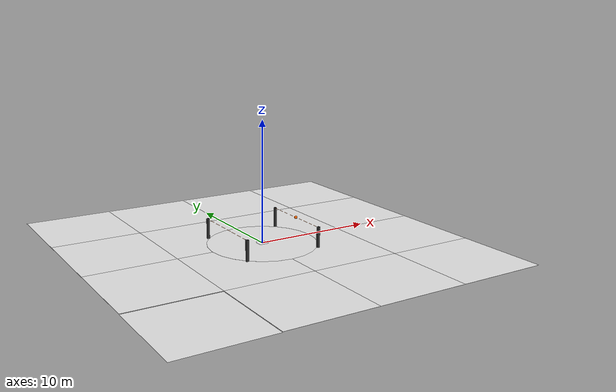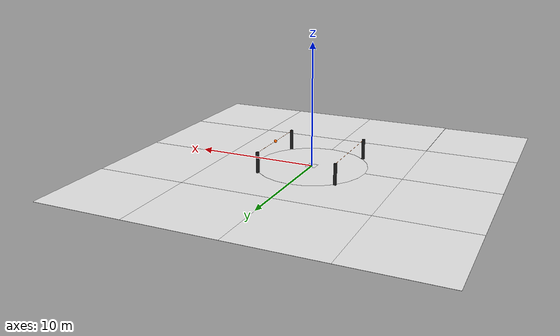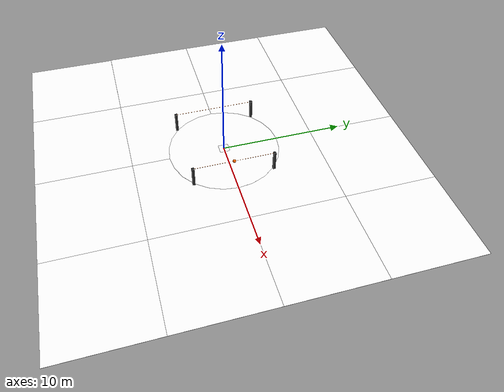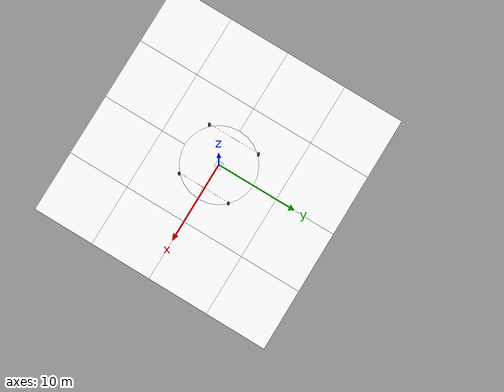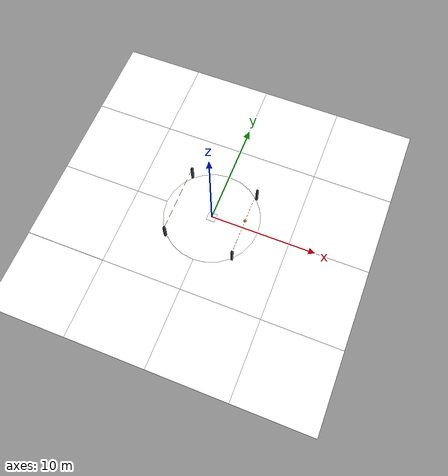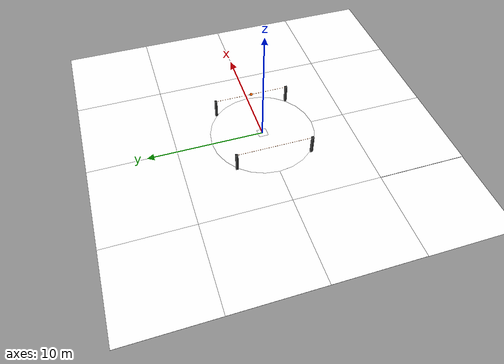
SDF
<?xml version='1.0' encoding='utf-8'?>
<sdf version='1.10'>
  <world name='eletroquad26_m2'>

    <physics type='ode'>
      <max_step_size>0.001</max_step_size>
      <real_time_factor>1</real_time_factor>
      <real_time_update_rate>1000</real_time_update_rate>
    </physics>
    <gravity>0 0 -9.8000000000000007</gravity>
    <magnetic_field>5.5644999999999998e-06 2.2875799999999999e-05 -4.2388400000000002e-05</magnetic_field>
    <atmosphere type='adiabatic'/>

    <scene>
      <ambient>0.400000006 0.400000006 0.400000006 1</ambient>
      <background>0.699999988 0.699999988 0.699999988 1</background>
      <sky/>
      <shadows>true</shadows>
    </scene>

    <!-- Bola pra Marcacao -->
    <model name='styro_ball'>
      <include><uri>models/eletroquad_26/hang_the_right_wire/styro_ball</uri></include>
      <pose degrees='true'>3.23 0 1.65 0 0 0</pose> <!--line 24-->
      <static>true</static>
    </model>
    <!-- Bola pra Marcacao -->

    <!-- Linhas -->
    <model name='pole1'>
      <include><uri>models/eletroquad_26/hang_the_right_wire/pole</uri></include>
      <pose degrees='true'>3.23 3.23 0.85 0 0 0</pose> <!--line 32-->
      <static>true</static>
    </model>
    <model name='pole2'>
      <include><uri>models/eletroquad_26/hang_the_right_wire/pole</uri></include>
      <pose degrees='true'>3.23 -3.23 0.85 0 0 0</pose> <!--line 37-->
      <static>true</static>
    </model>
    <model name='hose1'>
      <include><uri>models/eletroquad_26/hang_the_right_wire/hose</uri></include>
      <pose degrees='true'>3.23 0 1.65 -90 0 0</pose> <!--line 42-->
      <static>true</static>
    </model>

    <model name='pole3'>
      <include><uri>models/eletroquad_26/hang_the_right_wire/pole</uri></include>
      <pose degrees='true'>-3.23 3.23 0.85 0 0 0</pose> <!--line 48-->
      <static>true</static>
    </model>
    <model name='pole4'>
      <include><uri>models/eletroquad_26/hang_the_right_wire/pole</uri></include>
      <pose degrees='true'>-3.23 -3.23 0.85 0 0 0</pose> <!--line 53-->
      <static>true</static>
    </model>
    <model name='hose2'>
      <include><uri>models/eletroquad_26/hang_the_right_wire/hose</uri></include>
      <pose degrees='true'>-3.23 0 1.65 -90 0 0</pose> <!--line 58-->
      <static>true</static>
    </model>
    <!-- Linhas -->

    <!-- Takeoff -->
    <include>
      <uri>models/eletroquad_26/miscs/takeoff_platform</uri>
      <static>true</static>
      <pose degrees='true'>0 0 0.011 0 0 0</pose>
    </include>
    <!-- Takeoff -->

    <!-- Arena -->
    <include>
      <uri>models/eletroquad_26/miscs/arenas/circle</uri>
      <static>true</static>
      <pose degrees='true'>0 0 0.01 0 0 0</pose>
    </include>
    <!-- Arena -->

    <!-- Chao -->
      <include>
        <uri>models/eletroquad_26/miscs/ground_level</uri>
        <pose/>
      </include>
    <!-- Chao -->

    <!-- Luz -->
    <light name='sun' type='directional'>
      <pose>0 0 10 0 0 0</pose>
      <cast_shadows>true</cast_shadows>
      <intensity>1</intensity>
      <direction>-0.5 0.10000000000000001 -0.90000000000000002</direction>
      <diffuse>0.800000012 0.800000012 0.800000012 1</diffuse>
      <specular>0.200000003 0.200000003 0.200000003 1</specular>
      <attenuation>
        <range>1000</range>
        <linear>0.01</linear>
        <constant>0.90000000000000002</constant>
        <quadratic>0.001</quadratic>
      </attenuation>
      <spot>
        <inner_angle>0</inner_angle>
        <outer_angle>0</outer_angle>
        <falloff>0</falloff>
      </spot>
    </light>
    <!-- Luz -->

    <spherical_coordinates>
      <surface_model>EARTH_WGS84</surface_model>
      <world_frame_orientation>ENU</world_frame_orientation>
      <latitude_deg>47.397971057728974</latitude_deg>
      <longitude_deg>8.546163739800146</longitude_deg>
      <elevation>0</elevation>
    </spherical_coordinates>
  </world>
</sdf>

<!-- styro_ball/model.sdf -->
<sdf version='1.10'>
<model name='styro_ball'>
  <link name='styro_link'>
    <enable_wind>false</enable_wind>
    <collision name='styro_collision'>
      <geometry><sphere><radius>0.125</radius></sphere></geometry>
      <surface>
        <friction><ode/></friction>
        <bounce/>
        <contact/>
      </surface>
    </collision>
    <visual name='styro_visual'>
      <geometry><sphere><radius>0.125</radius></sphere></geometry>
      <!-- EDITAL -->
      <material><ambient>1 0.3984375 0</ambient><diffuse>1 0.3984375 0</diffuse><specular>1 0.3984375 0</specular></material>
      <!-- EDITAL -->

    </visual>
  </link>
  <self_collide>false</self_collide>
  <static>true</static>
</model>
</sdf>

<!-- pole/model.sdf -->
<sdf version='1.10'>
<model name='pole'>
  <link name='pole_link'>
    <enable_wind>false</enable_wind>
    <collision name='pole_collision'>
      <geometry><box><size>0.2 0.2 1.7</size></box></geometry>
      <surface>
        <friction><ode/></friction>
        <bounce/>
        <contact/>
      </surface>
    </collision>
    <visual name='pole_visual'>
      <geometry><box><size>0.2 0.2 1.7</size></box></geometry>
      <material>
        <diffuse>0.15 0.15 0.15 1</diffuse>
        <specular>1 1 1 1</specular>
      </material>
    </visual>
  </link>
  <self_collide>false</self_collide>
  <static>true</static>
</model>
</sdf>

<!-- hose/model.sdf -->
<sdf version='1.10'>
<model name='hose'>
  <link name='hose_link'>
    <enable_wind>false</enable_wind>
    <collision name='hose_collision'>
      <geometry><cylinder>
        <radius>0.00635</radius>
        <length>6.48</length>
      </cylinder></geometry>
      <surface>
        <friction><ode/></friction>
        <bounce/>
        <contact/>
      </surface>
    </collision>
    <visual name='hose_visual'>
      <geometry><cylinder>
        <radius>0.00635</radius>
        <length>6.48</length>
      </cylinder></geometry>
      <!-- EDITAL -->
      <material><ambient>1 0.3984375 0</ambient><diffuse>1 0.3984375 0</diffuse><specular>1 0.3984375 0</specular></material>
      <!-- EDITAL -->

    </visual>
  </link>
  <self_collide>false</self_collide>
  <static>true</static>
</model>
</sdf>

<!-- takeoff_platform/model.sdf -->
<sdf version='1.10'>
<model name='takeoff_platform'>
  <include merge='true'><uri>models/miscs/default_platform</uri></include>
  <link name='takeoff_link'>
    <enable_wind>false</enable_wind>
    <visual name='takeoff_image'>
      <pose>0 0 0.001 0 0 0</pose>
      <geometry><plane>
        <normal>0 0 1</normal>
        <size>0.8 0.8</size>
      </plane></geometry>
        <material>
        <diffuse>1 1 1 1</diffuse>
        <specular>1 1 1 1</specular>
        <pbr>
          <metal>
            <albedo_map>materials/textures/takeoff.png</albedo_map>
            <metalness>0</metalness>
            <roughness>1</roughness>
          </metal>
        </pbr>
        </material>
    </visual>
  </link>
  <self_collide>false</self_collide>
  <static>true</static>
</model>
</sdf>

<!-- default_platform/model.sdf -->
<sdf version='1.10'>
<model name='default_platform'>
  <link name='default_link'>
    <enable_wind>false</enable_wind>
    <collision name='default_collision'>
      <geometry><cylinder>
        <radius>0.4</radius>
        <length>0.001</length>
      </cylinder></geometry>
      <surface>
        <friction><ode/></friction>
        <bounce/>
        <contact/>
      </surface>
    </collision>
    <visual name='default_visual'>
      <geometry><cylinder>
        <radius>0.4</radius>
        <length>0.001</length>
      </cylinder></geometry>
      <material>
        <ambient>1 1 1 1</ambient>
        <diffuse>1 1 1 1</diffuse>
        <specular>1 1 1 1</specular>
      </material>
    </visual>
  </link>
  <self_collide>false</self_collide>
  <static>true</static>
</model>
</sdf>

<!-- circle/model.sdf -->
<sdf version='1.10'>
<model name='arena'>
  <link name='arena_link'>
    <enable_wind>false</enable_wind>
    <collision name='arena_collision'>
      <geometry><cylinder>
        <radius>4.5</radius>
        <length>0.001</length>
      </cylinder></geometry>
      <surface>
        <friction><ode/></friction>
        <bounce/>
        <contact/>
      </surface>
    </collision>
    <visual name='arena_visual'>
      <geometry><cylinder>
        <radius>4.5</radius>
        <length>0.001</length>
      </cylinder></geometry>
      <material>
        <ambient>0.4 0.4 0.4 1</ambient>
        <diffuse>1 1 1 1</diffuse>
        <specular>1 1 1 1</specular>
      </material>
    </visual>
  </link>
  <self_collide>false</self_collide>
</model>
</sdf>

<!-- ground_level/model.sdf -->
<sdf version='1.9'>
  <model name='ground_plane'>
    <static>true</static>
    <pose>0 0 0 0 0 0</pose>
    <self_collide>false</self_collide>
    <link name='link'>
      <collision name='collision'>
        <geometry>
          <plane>
            <normal>0 0 1</normal>
            <size>30 30</size>
          </plane>
        </geometry>
        <surface>
          <friction>
            <ode/>
          </friction>
          <bounce/>
          <contact/>
        </surface>
      </collision>
      <visual name='visual1'>
        <pose>-11.25 -11.25 0 0 0 1.5708</pose>
        <geometry>
          <plane>
            <normal>0 0 1</normal>
            <size>7.5 7.5</size>
          </plane>
        </geometry>
        <material>
          <diffuse>1.0 1.0 1.0</diffuse>
          <specular>1.0 1.0 1.0</specular>
          <pbr>
            <metal>
              <albedo_map>materials/textures/grass.png</albedo_map>
              <metalness>0</metalness>
              <roughness>0.7</roughness>
            </metal>
          </pbr>
        </material>
      </visual>
      <visual name='visual2'>
        <pose>-3.75 -11.25 0 0 0 3.14159</pose>
        <geometry>
          <plane>
            <normal>0 0 1</normal>
            <size>7.5 7.5</size>
          </plane>
        </geometry>
        <material>
          <diffuse>1.0 1.0 1.0</diffuse>
          <specular>1.0 1.0 1.0</specular>
          <pbr>
            <metal>
              <albedo_map>materials/textures/grass.png</albedo_map>
              <metalness>0</metalness>
              <roughness>0.7</roughness>
            </metal>
          </pbr>
        </material>
      </visual>
      <visual name='visual3'>
        <pose>3.75 -11.25 0 0 0 4.71239</pose>
        <geometry>
          <plane>
            <normal>0 0 1</normal>
            <size>7.5 7.5</size>
          </plane>
        </geometry>
        <material>
          <diffuse>1.0 1.0 1.0</diffuse>
          <specular>1.0 1.0 1.0</specular>
          <pbr>
            <metal>
              <albedo_map>materials/textures/grass.png</albedo_map>
              <metalness>0</metalness>
              <roughness>0.7</roughness>
            </metal>
          </pbr>
        </material>
      </visual>
      <visual name='visual4'>
        <pose>11.25 -11.25 0 0 0 0</pose>
        <geometry>
          <plane>
            <normal>0 0 1</normal>
            <size>7.5 7.5</size>
          </plane>
        </geometry>
        <material>
          <diffuse>1.0 1.0 1.0</diffuse>
          <specular>1.0 1.0 1.0</specular>
          <pbr>
            <metal>
              <albedo_map>materials/textures/grass.png</albedo_map>
              <metalness>0</metalness>
              <roughness>0.7</roughness>
            </metal>
          </pbr>
        </material>
      </visual>
      <visual name='visual5'>
        <pose>-11.25 -3.75 0 0 0 3.14159</pose>
        <geometry>
          <plane>
            <normal>0 0 1</normal>
            <size>7.5 7.5</size>
          </plane>
        </geometry>
        <material>
          <diffuse>1.0 1.0 1.0</diffuse>
          <specular>1.0 1.0 1.0</specular>
          <pbr>
            <metal>
              <albedo_map>materials/textures/grass.png</albedo_map>
              <metalness>0</metalness>
              <roughness>0.7</roughness>
            </metal>
          </pbr>
        </material>
      </visual>
      <visual name='visual6'>
        <pose>-3.75 -3.75 0 0 0 1.5708</pose>
        <geometry>
          <plane>
            <normal>0 0 1</normal>
            <size>7.5 7.5</size>
          </plane>
        </geometry>
        <material>
          <diffuse>1.0 1.0 1.0</diffuse>
          <specular>1.0 1.0 1.0</specular>
          <pbr>
            <metal>
              <albedo_map>materials/textures/grass.png</albedo_map>
              <metalness>0</metalness>
              <roughness>0.7</roughness>
            </metal>
          </pbr>
        </material>
      </visual>
      <visual name='visual7'>
        <pose>3.75 -3.75 0 0 0 0</pose>
        <geometry>
          <plane>
            <normal>0 0 1</normal>
            <size>7.5 7.5</size>
          </plane>
        </geometry>
        <material>
          <diffuse>1.0 1.0 1.0</diffuse>
          <specular>1.0 1.0 1.0</specular>
          <pbr>
            <metal>
              <albedo_map>materials/textures/grass.png</albedo_map>
              <metalness>0</metalness>
              <roughness>0.7</roughness>
            </metal>
          </pbr>
        </material>
      </visual>
      <visual name='visual8'>
        <pose>11.25 -3.75 0 0 0 4.71239</pose>
        <geometry>
          <plane>
            <normal>0 0 1</normal>
            <size>7.5 7.5</size>
          </plane>
        </geometry>
        <material>
          <diffuse>1.0 1.0 1.0</diffuse>
          <specular>1.0 1.0 1.0</specular>
          <pbr>
            <metal>
              <albedo_map>materials/textures/grass.png</albedo_map>
              <metalness>0</metalness>
              <roughness>0.7</roughness>
            </metal>
          </pbr>
        </material>
      </visual>
      <visual name='visual9'>
        <pose>-11.25 3.75 0 0 0 0</pose>
        <geometry>
          <plane>
            <normal>0 0 1</normal>
            <size>7.5 7.5</size>
          </plane>
        </geometry>
        <material>
          <diffuse>1.0 1.0 1.0</diffuse>
          <specular>1.0 1.0 1.0</specular>
          <pbr>
            <metal>
              <albedo_map>materials/textures/grass.png</albedo_map>
              <metalness>0</metalness>
              <roughness>0.7</roughness>
            </metal>
          </pbr>
        </material>
      </visual>
      <visual name='visual10'>
        <pose>-3.75 3.75 0 0 0 0</pose>
        <geometry>
          <plane>
            <normal>0 0 1</normal>
            <size>7.5 7.5</size>
          </plane>
        </geometry>
        <material>
          <diffuse>1.0 1.0 1.0</diffuse>
          <specular>1.0 1.0 1.0</specular>
          <pbr>
            <metal>
              <albedo_map>materials/textures/grass.png</albedo_map>
              <metalness>0</metalness>
              <roughness>0.7</roughness>
            </metal>
          </pbr>
        </material>
      </visual>
      <visual name='visual11'>
        <pose>3.75 3.75 0 0 0 3.14159</pose>
        <geometry>
          <plane>
            <normal>0 0 1</normal>
            <size>7.5 7.5</size>
          </plane>
        </geometry>
        <material>
          <diffuse>1.0 1.0 1.0</diffuse>
          <specular>1.0 1.0 1.0</specular>
          <pbr>
            <metal>
              <albedo_map>materials/textures/grass.png</albedo_map>
              <metalness>0</metalness>
              <roughness>0.7</roughness>
            </metal>
          </pbr>
        </material>
      </visual>
      <visual name='visual12'>
        <pose>11.25 3.75 0 0 0 4.71239</pose>
        <geometry>
          <plane>
            <normal>0 0 1</normal>
            <size>7.5 7.5</size>
          </plane>
        </geometry>
        <material>
          <diffuse>1.0 1.0 1.0</diffuse>
          <specular>1.0 1.0 1.0</specular>
          <pbr>
            <metal>
              <albedo_map>materials/textures/grass.png</albedo_map>
              <metalness>0</metalness>
              <roughness>0.7</roughness>
            </metal>
          </pbr>
        </material>
      </visual>
      <visual name='visual13'>
        <pose>-11.25 11.25 0 0 0 1.5708</pose>
        <geometry>
          <plane>
            <normal>0 0 1</normal>
            <size>7.5 7.5</size>
          </plane>
        </geometry>
        <material>
          <diffuse>1.0 1.0 1.0</diffuse>
          <specular>1.0 1.0 1.0</specular>
          <pbr>
            <metal>
              <albedo_map>materials/textures/grass.png</albedo_map>
              <metalness>0</metalness>
              <roughness>0.7</roughness>
            </metal>
          </pbr>
        </material>
      </visual>
      <visual name='visual14'>
        <pose>-3.75 11.25 0 0 0 3.14159</pose>
        <geometry>
          <plane>
            <normal>0 0 1</normal>
            <size>7.5 7.5</size>
          </plane>
        </geometry>
        <material>
          <diffuse>1.0 1.0 1.0</diffuse>
          <specular>1.0 1.0 1.0</specular>
          <pbr>
            <metal>
              <albedo_map>materials/textures/grass.png</albedo_map>
              <metalness>0</metalness>
              <roughness>0.7</roughness>
            </metal>
          </pbr>
        </material>
      </visual>
      <visual name='visual15'>
        <pose>3.75 11.25 0 0 0 0</pose>
        <geometry>
          <plane>
            <normal>0 0 1</normal>
            <size>7.5 7.5</size>
          </plane>
        </geometry>
        <material>
          <diffuse>1.0 1.0 1.0</diffuse>
          <specular>1.0 1.0 1.0</specular>
          <pbr>
            <metal>
              <albedo_map>materials/textures/grass.png</albedo_map>
              <metalness>0</metalness>
              <roughness>0.7</roughness>
            </metal>
          </pbr>
        </material>
      </visual>
      <visual name='visual16'>
        <pose>11.25 11.25 0 0 0 0</pose>
        <geometry>
          <plane>
            <normal>0 0 1</normal>
            <size>7.5 7.5</size>
          </plane>
        </geometry>
        <material>
          <diffuse>1.0 1.0 1.0</diffuse>
          <specular>1.0 1.0 1.0</specular>
          <pbr>
            <metal>
              <albedo_map>materials/textures/grass.png</albedo_map>
              <metalness>0</metalness>
              <roughness>0.7</roughness>
            </metal>
          </pbr>
        </material>
      </visual>
      <enable_wind>false</enable_wind>
    </link>
  </model>
</sdf>
